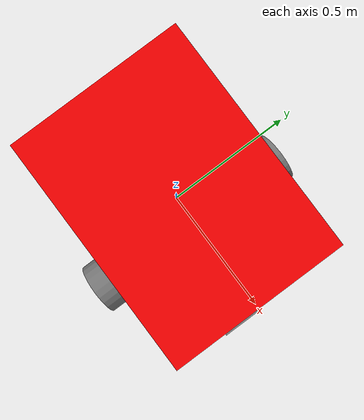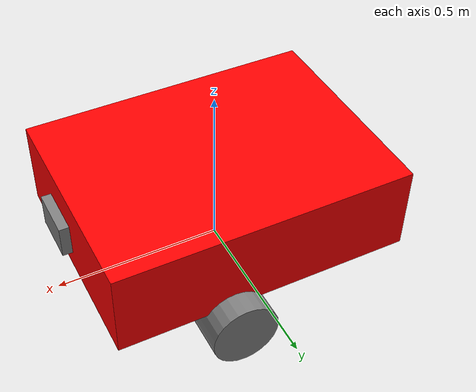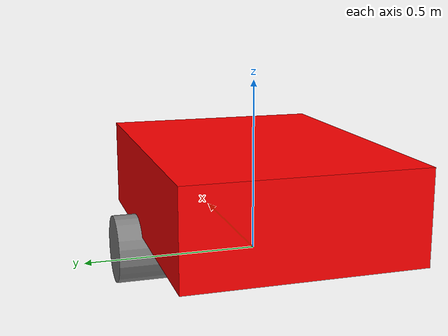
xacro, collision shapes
<?xml version="1.0"?>
<robot xmlns:xacro="http://www.ros.org/wiki/xacro" name="robot_name">
  <!-- Define robot constants -->
  <xacro:property name="base_width" value="0.660"/>
  <xacro:property name="base_length" value="0.890"/>
  <xacro:property name="base_height" value="0.265"/>

  <xacro:property name="wheel_radius" value="0.10"/>
  <xacro:property name="wheel_width" value="0.38"/>

  <xacro:property name="wheel_ygap" value="-0.1"/>
  <xacro:property name="wheel_zoff" value="0.1"/>
  <xacro:property name="wheel_xoff" value="0.0"/>

  <joint name="base_footprint_joint" type="fixed">
    <parent link="base_link"/>
    <child link="base_footprint"/>
    <origin xyz="0 0 0" rpy="0 0 0"/>
  </joint>

  <link name="base_footprint">
    <!-- Typically a frame, no collision geometry needed -->
  </link>

  <!-- Base link (frame only, no collision geometry added here) -->
  <link name="base_link">
  </link>

  <joint name="chassis_joint" type="fixed">
    <parent link="base_link"/>
    <child link="chasis"/>
    <origin xyz="0.0 0.0 0.055" rpy="0 0 0"/>
  </joint>

  <link name="chasis">
    <visual name="">
      <origin xyz="3.2 -0.32 0.0" rpy="${pi/2} 0.0 ${pi}"/>
      <geometry>
        <mesh filename="package://robot_description/src/meshes/chasis.STL" scale="0.001 0.001 0.001"/>
      </geometry>
      <material name="">
        <color rgba="1.0 0.0 0.0 1.0"/>
        <texture filename=""/>
      </material>
    </visual>
    <collision name="collision">
      <!-- A simplified collision model as a box using the chassis dimensions.
           Adjust the origin as needed to match the physical center of mass. -->
      <origin xyz="0 0 ${base_height/2}" rpy="0 0 ${pi}"/>
      <geometry>
        <box size="${base_length} ${base_width} ${base_height}"/>
      </geometry>
    </collision>
  </link>

  <!-- Wheels -->
  <xacro:macro name="wheel" params="prefix x_reflect y_reflect">
    <link name="${prefix}_link">
      <visual>
        <origin xyz="0.1 -0.02 -0.1" rpy="${pi/2} 0 ${pi}"/>
        <geometry>
          <mesh filename="package://robot_description/src/meshes/wheel.STL" scale="0.001 0.001 0.001"/>
        </geometry>
        <material name="Gray">
          <color rgba="0.5 0.5 0.5 1.0"/>
        </material>
      </visual>
      <collision>
        <origin xyz="0.1 -0.02 -0.1" rpy="${pi/2} 0 ${pi}"/>
        <geometry>
          <!-- Using a cylinder as a simplified collision model for the wheel -->
          <cylinder length="${wheel_width}" radius="${wheel_radius}"/>
        </geometry>
      </collision>
    </link>

    <joint name="${prefix}_joint" type="continuous">
      <parent link="base_link"/>
      <child link="${prefix}_link"/>
      <origin xyz="${-1*x_reflect*wheel_xoff} ${-1*y_reflect*(base_width/2+wheel_ygap)} ${wheel_zoff}" rpy="0 0 0"/>
      <axis xyz="0 1 0"/>
    </joint>
  </xacro:macro>

  <xacro:wheel prefix="drivewhl_l" x_reflect="-1" y_reflect="-1" />
  <xacro:wheel prefix="drivewhl_r" x_reflect="-1" y_reflect="1" />

  <!-- ZED Camera Link -->
  <link name="zed_camera_link">
    <visual>
      <origin xyz="0 -0.1 0" rpy="0 0 ${pi/2}"/>
      <geometry>
        <mesh filename="package://robot_description/src/meshes/zed.STL" scale="0.001 0.001 0.001"/>
      </geometry>
      <material name="Gray">
        <color rgba="0.5 0.5 0.5 1.0"/>
      </material>
    </visual>
    <collision>
      <origin xyz="0 -0.1 0" rpy="0 0 ${pi/2}"/>
      <!-- A simple box collision approximating the camera's dimensions -->
      <geometry>
        <box size="0.15 0.15 0.1"/>
      </geometry>
    </collision>
  </link>

  <joint name="zed_camera_joint" type="fixed">
    <parent link="base_link"/>
    <child link="zed_camera_link"/>
    <!-- Adjust these values to match your real mounting position -->
    <origin xyz="0.4 0.03 0.17" rpy="0 0 0"/>
  </joint>

</robot>
